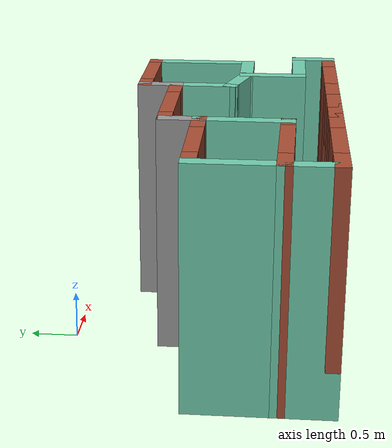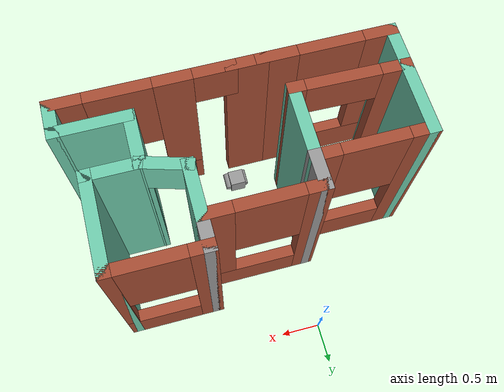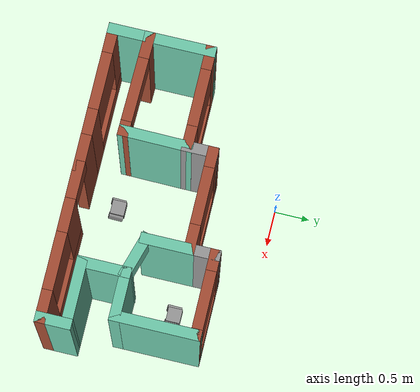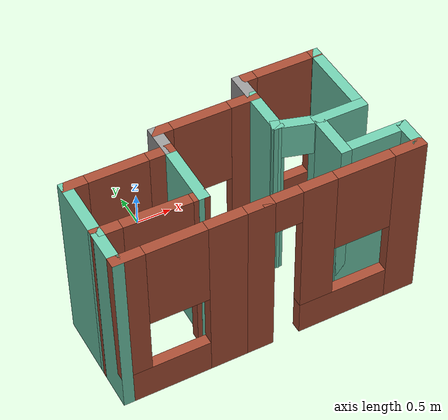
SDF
<sdf version="1.7">
 <world name="__default__">
  <gravity>0 0 -9.8</gravity>
  <magnetic_field>6e-06 2.3e-05 -4.2e-05</magnetic_field>
  <atmosphere type="adiabatic"/>
  <physics type="ode">
   <max_step_size>0.001</max_step_size>
   <real_time_factor>1</real_time_factor>
   <real_time_update_rate>1000</real_time_update_rate>
  </physics>
  <scene><ambient>0.4 0.4 0.4 1</ambient><background>0.7 0.7 0.7 1</background><shadows>1</shadows></scene>
  <spherical_coordinates>
   <surface_model>EARTH_WGS84</surface_model>
   <latitude_deg>0</latitude_deg>
   <longitude_deg>0</longitude_deg>
   <elevation>0</elevation>
   <heading_deg>0</heading_deg>
  </spherical_coordinates>
  <model name="House">
   <pose>0.57417 -1.3725 0 0 -0 0</pose>
   <link name="Wall_0">
    <collision name="Wall_0_Collision">
     <geometry><box><size>1 0.15 2.5</size></box></geometry>
     <pose>0 0 1.25 0 -0 0</pose>
    </collision>
    <visual name="Wall_0_Visual">
     <pose>0 0 1.25 0 -0 0</pose>
     <geometry><box><size>1 0.15 2.5</size></box></geometry>
     <material>
      <script><uri>file://media/materials/scripts/gazebo.material</uri><name>Gazebo/Grey</name></script>
      <ambient>0.435294 0.796078 0.67451 1</ambient>
     </material>
     <meta><layer>0</layer></meta>
    </visual>
    <pose>-2.02417 -0.3725 0 0 -0 1.5708</pose>
   </link>
   <link name="Wall_1">
    <pose>-1.34917 0.0525 0 0 -0 0</pose>
    <visual name="Wall_1_Visual_0">
     <pose>-0.5825 0 1.25 0 -0 0</pose>
     <geometry><box><size>0.335 0.15 2.5</size></box></geometry>
     <material>
      <script><uri>file://media/materials/scripts/gazebo.material</uri><name>Gazebo/Bricks</name></script>
      <ambient>0.435294 0.796078 0.67451 1</ambient>
     </material>
     <meta><layer>0</layer></meta>
    </visual>
    <collision name="Wall_1_Collision_0">
     <geometry><box><size>0.335 0.15 2.5</size></box></geometry>
     <pose>-0.5825 0 1.25 0 -0 0</pose>
    </collision>
    <visual name="Wall_1_Visual_1">
     <pose>0.1675 0 0.25 0 -0 0</pose>
     <geometry><box><size>1.165 0.15 0.5</size></box></geometry>
     <material>
      <script><uri>file://media/materials/scripts/gazebo.material</uri><name>Gazebo/Bricks</name></script>
      <ambient>0.435294 0.796078 0.67451 1</ambient>
     </material>
     <meta><layer>0</layer></meta>
    </visual>
    <collision name="Wall_1_Collision_1">
     <geometry><box><size>1.165 0.15 0.5</size></box></geometry>
     <pose>0.1675 0 0.25 0 -0 0</pose>
    </collision>
    <visual name="Wall_1_Visual_2">
     <pose>0.5675 0 1.5 0 -0 0</pose>
     <geometry><box><size>0.365 0.15 2</size></box></geometry>
     <material>
      <script><uri>file://media/materials/scripts/gazebo.material</uri><name>Gazebo/Bricks</name></script>
      <ambient>0.435294 0.796078 0.67451 1</ambient>
     </material>
     <meta><layer>0</layer></meta>
    </visual>
    <collision name="Wall_1_Collision_2">
     <geometry><box><size>0.365 0.15 2</size></box></geometry>
     <pose>0.5675 0 1.5 0 -0 0</pose>
    </collision>
    <visual name="Wall_1_Visual_3">
     <pose>-0.015 0 1.9 0 -0 0</pose>
     <geometry><box><size>0.8 0.15 1.2</size></box></geometry>
     <material>
      <script><uri>file://media/materials/scripts/gazebo.material</uri><name>Gazebo/Bricks</name></script>
      <ambient>0.435294 0.796078 0.67451 1</ambient>
     </material>
     <meta><layer>0</layer></meta>
    </visual>
    <collision name="Wall_1_Collision_3">
     <geometry><box><size>0.8 0.15 1.2</size></box></geometry>
     <pose>-0.015 0 1.9 0 -0 0</pose>
    </collision>
   </link>
   <link name="Wall_10">
    <collision name="Wall_10_Collision">
     <geometry><box><size>0.5 0.15 2.5</size></box></geometry>
     <pose>0 0 1.25 0 -0 0</pose>
    </collision>
    <visual name="Wall_10_Visual">
     <pose>0 0 1.25 0 -0 0</pose>
     <geometry><box><size>0.5 0.15 2.5</size></box></geometry>
     <material>
      <script><uri>file://media/materials/scripts/gazebo.material</uri><name>Gazebo/Grey</name></script>
      <ambient>0.435294 0.796078 0.67451 1</ambient>
     </material>
     <meta><layer>0</layer></meta>
    </visual>
    <pose>2.02583 -1.1225 0 0 -0 -1.5708</pose>
   </link>
   <link name="Wall_11">
    <pose>0.97583 -1.2975 0 0 -0 3.14159</pose>
    <visual name="Wall_11_Visual_0">
     <pose>-0.8975 0 1.25 0 -0 0</pose>
     <geometry><box><size>0.455 0.15 2.5</size></box></geometry>
     <material>
      <script><uri>file://media/materials/scripts/gazebo.material</uri><name>Gazebo/Bricks</name></script>
      <ambient>0.435294 0.796078 0.67451 1</ambient>
     </material>
     <meta><layer>0</layer></meta>
    </visual>
    <collision name="Wall_11_Collision_0">
     <geometry><box><size>0.455 0.15 2.5</size></box></geometry>
     <pose>-0.8975 0 1.25 0 -0 0</pose>
    </collision>
    <visual name="Wall_11_Visual_1">
     <pose>-0.035 0 0.25 0 -0 0</pose>
     <geometry><box><size>1.27 0.15 0.5</size></box></geometry>
     <material>
      <script><uri>file://media/materials/scripts/gazebo.material</uri><name>Gazebo/Bricks</name></script>
      <ambient>0.435294 0.796078 0.67451 1</ambient>
     </material>
     <meta><layer>0</layer></meta>
    </visual>
    <collision name="Wall_11_Collision_1">
     <geometry><box><size>1.27 0.15 0.5</size></box></geometry>
     <pose>-0.035 0 0.25 0 -0 0</pose>
    </collision>
    <visual name="Wall_11_Visual_2">
     <pose>0.365 0 1.5 0 -0 0</pose>
     <geometry><box><size>0.47 0.15 2</size></box></geometry>
     <material>
      <script><uri>file://media/materials/scripts/gazebo.material</uri><name>Gazebo/Bricks</name></script>
      <ambient>0.435294 0.796078 0.67451 1</ambient>
     </material>
     <meta><layer>0</layer></meta>
    </visual>
    <collision name="Wall_11_Collision_2">
     <geometry><box><size>0.47 0.15 2</size></box></geometry>
     <pose>0.365 0 1.5 0 -0 0</pose>
    </collision>
    <visual name="Wall_11_Visual_3">
     <pose>-0.27 0 1.9 0 -0 0</pose>
     <geometry><box><size>0.8 0.15 1.2</size></box></geometry>
     <material>
      <script><uri>file://media/materials/scripts/gazebo.material</uri><name>Gazebo/Bricks</name></script>
      <ambient>0.435294 0.796078 0.67451 1</ambient>
     </material>
     <meta><layer>0</layer></meta>
    </visual>
    <collision name="Wall_11_Collision_3">
     <geometry><box><size>0.8 0.15 1.2</size></box></geometry>
     <pose>-0.27 0 1.9 0 -0 0</pose>
    </collision>
    <visual name="Wall_11_Visual_4">
     <pose>0.8625 0 2.25 0 -0 0</pose>
     <geometry><box><size>0.525 0.15 0.5</size></box></geometry>
     <material>
      <script><uri>file://media/materials/scripts/gazebo.material</uri><name>Gazebo/Bricks</name></script>
      <ambient>0.435294 0.796078 0.67451 1</ambient>
     </material>
     <meta><layer>0</layer></meta>
    </visual>
    <collision name="Wall_11_Collision_4">
     <geometry><box><size>0.525 0.15 0.5</size></box></geometry>
     <pose>0.8625 0 2.25 0 -0 0</pose>
    </collision>
   </link>
   <link name="Wall_15">
    <pose>-1.23417 -1.2975 0 0 -0 3.14159</pose>
    <visual name="Wall_15_Visual_0">
     <pose>-0.607813 0 1.25 0 -0 0</pose>
     <geometry><box><size>0.514375 0.15 2.5</size></box></geometry>
     <material>
      <script><uri>file://media/materials/scripts/gazebo.material</uri><name>Gazebo/Bricks</name></script>
      <ambient>0.435294 0.796078 0.67451 1</ambient>
     </material>
     <meta><layer>0</layer></meta>
    </visual>
    <collision name="Wall_15_Collision_0">
     <geometry><box><size>0.514375 0.15 2.5</size></box></geometry>
     <pose>-0.607813 0 1.25 0 -0 0</pose>
    </collision>
    <visual name="Wall_15_Visual_1">
     <pose>0.257187 0 0.25 0 -0 0</pose>
     <geometry><box><size>1.21562 0.15 0.5</size></box></geometry>
     <material>
      <script><uri>file://media/materials/scripts/gazebo.material</uri><name>Gazebo/Bricks</name></script>
      <ambient>0.435294 0.796078 0.67451 1</ambient>
     </material>
     <meta><layer>0</layer></meta>
    </visual>
    <collision name="Wall_15_Collision_1">
     <geometry><box><size>1.21562 0.15 0.5</size></box></geometry>
     <pose>0.257187 0 0.25 0 -0 0</pose>
    </collision>
    <visual name="Wall_15_Visual_2">
     <pose>0.657187 0 1.5 0 -0 0</pose>
     <geometry><box><size>0.415625 0.15 2</size></box></geometry>
     <material>
      <script><uri>file://media/materials/scripts/gazebo.material</uri><name>Gazebo/Bricks</name></script>
      <ambient>0.435294 0.796078 0.67451 1</ambient>
     </material>
     <meta><layer>0</layer></meta>
    </visual>
    <collision name="Wall_15_Collision_2">
     <geometry><box><size>0.415625 0.15 2</size></box></geometry>
     <pose>0.657187 0 1.5 0 -0 0</pose>
    </collision>
    <visual name="Wall_15_Visual_3">
     <pose>0.049375 0 1.9 0 -0 0</pose>
     <geometry><box><size>0.8 0.15 1.2</size></box></geometry>
     <material>
      <script><uri>file://media/materials/scripts/gazebo.material</uri><name>Gazebo/Bricks</name></script>
      <ambient>0.435294 0.796078 0.67451 1</ambient>
     </material>
     <meta><layer>0</layer></meta>
    </visual>
    <collision name="Wall_15_Collision_3">
     <geometry><box><size>0.8 0.15 1.2</size></box></geometry>
     <pose>0.049375 0 1.9 0 -0 0</pose>
    </collision>
   </link>
   <link name="Wall_16">
    <collision name="Wall_16_Collision">
     <geometry><box><size>0.65 0.15 2.5</size></box></geometry>
     <pose>0 0 1.25 0 -0 0</pose>
    </collision>
    <visual name="Wall_16_Visual">
     <pose>0 0 1.25 0 -0 0</pose>
     <geometry><box><size>0.65 0.15 2.5</size></box></geometry>
     <material>
      <script><uri>file://media/materials/scripts/gazebo.material</uri><name>Gazebo/Grey</name></script>
      <ambient>0.435294 0.796078 0.67451 1</ambient>
     </material>
     <meta><layer>0</layer></meta>
    </visual>
    <pose>-2.02417 -1.0475 0 0 -0 1.5708</pose>
   </link>
   <link name="Wall_18">
    <collision name="Wall_18_Collision">
     <geometry><box><size>0.52 0.15 2.5</size></box></geometry>
     <pose>0 0 1.25 0 -0 0</pose>
    </collision>
    <visual name="Wall_18_Visual">
     <pose>0 0 1.25 0 -0 0</pose>
     <geometry><box><size>0.52 0.15 2.5</size></box></geometry>
     <material>
      <script><uri>file://media/materials/scripts/gazebo.material</uri><name>Gazebo/Bricks</name></script>
      <ambient>0.435294 0.796078 0.67451 1</ambient>
     </material>
     <meta><layer>0</layer></meta>
    </visual>
    <pose>-0.25917 -1.2975 0 0 -0 0</pose>
   </link>
   <link name="Wall_2">
    <collision name="Wall_2_Collision">
     <geometry><box><size>0.5 0.15 2.5</size></box></geometry>
     <pose>0 0 1.25 0 -0 0</pose>
    </collision>
    <visual name="Wall_2_Visual">
     <pose>0 0 1.25 0 -0 0</pose>
     <geometry><box><size>0.5 0.15 2.5</size></box></geometry>
     <material>
      <script><uri>file://media/materials/scripts/gazebo.material</uri><name>Gazebo/Grey</name></script>
      <ambient>1 1 1 1</ambient>
     </material>
     <meta><layer>0</layer></meta>
    </visual>
    <pose>-0.67417 0.2275 0 0 -0 1.5708</pose>
   </link>
   <link name="Wall_20">
    <collision name="Wall_20_Collision">
     <geometry><box><size>1.03006 0.15 2.5</size></box></geometry>
     <pose>0 0 1.25 0 -0 0</pose>
    </collision>
    <visual name="Wall_20_Visual">
     <pose>0 0 1.25 0 -0 0</pose>
     <geometry><box><size>1.03006 0.15 2.5</size></box></geometry>
     <material>
      <script><uri>file://media/materials/scripts/gazebo.material</uri><name>Gazebo/Grey</name></script>
      <ambient>0.435294 0.796078 0.67451 1</ambient>
     </material>
     <meta><layer>0</layer></meta>
    </visual>
    <pose>-0.67917 -0.3875 0 0 -0 1.55943</pose>
   </link>
   <link name="Wall_22">
    <pose>-1.35417 -0.8125 0 0 -0 -0.022384</pose>
    <visual name="Wall_22_Visual_0">
     <pose>-0.557426 0 1.25 0 -0 0</pose>
     <geometry><box><size>0.375484 0.15 2.5</size></box></geometry>
     <material>
      <script><uri>file://media/materials/scripts/gazebo.material</uri><name>Gazebo/Bricks</name></script>
      <ambient>0.435294 0.796078 0.67451 1</ambient>
     </material>
     <meta><layer>0</layer></meta>
    </visual>
    <collision name="Wall_22_Collision_0">
     <geometry><box><size>0.375484 0.15 2.5</size></box></geometry>
     <pose>-0.557426 0 1.25 0 -0 0</pose>
    </collision>
    <visual name="Wall_22_Visual_1">
     <pose>0.637742 0 1.25 0 -0 0</pose>
     <geometry><box><size>0.214852 0.15 2.5</size></box></geometry>
     <material>
      <script><uri>file://media/materials/scripts/gazebo.material</uri><name>Gazebo/Bricks</name></script>
      <ambient>0.435294 0.796078 0.67451 1</ambient>
     </material>
     <meta><layer>0</layer></meta>
    </visual>
    <collision name="Wall_22_Collision_1">
     <geometry><box><size>0.214852 0.15 2.5</size></box></geometry>
     <pose>0.637742 0 1.25 0 -0 0</pose>
    </collision>
    <visual name="Wall_22_Visual_2">
     <pose>0.080316 0 2.25 0 -0 0</pose>
     <geometry><box><size>0.9 0.15 0.5</size></box></geometry>
     <material>
      <script><uri>file://media/materials/scripts/gazebo.material</uri><name>Gazebo/Bricks</name></script>
      <ambient>0.435294 0.796078 0.67451 1</ambient>
     </material>
     <meta><layer>0</layer></meta>
    </visual>
    <collision name="Wall_22_Collision_2">
     <geometry><box><size>0.9 0.15 0.5</size></box></geometry>
     <pose>0.080316 0 2.25 0 -0 0</pose>
    </collision>
   </link>
   <link name="Wall_24">
    <collision name="Wall_24_Collision">
     <geometry><box><size>0.75 0.15 2.5</size></box></geometry>
     <pose>0 0 1.25 0 -0 0</pose>
    </collision>
    <visual name="Wall_24_Visual">
     <pose>0 0 1.25 0 -0 0</pose>
     <geometry><box><size>0.75 0.15 2.5</size></box></geometry>
     <material>
      <script><uri>file://media/materials/scripts/gazebo.material</uri><name>Gazebo/Grey</name></script>
      <ambient>0.435294 0.796078 0.67451 1</ambient>
     </material>
     <meta><layer>0</layer></meta>
    </visual>
    <pose>0.67583 0.1025 0 0 -0 -1.5708</pose>
   </link>
   <link name="Wall_25">
    <pose>0.92583 -0.2725 0 0 -0 -0.291457</pose>
    <visual name="Wall_25_Visual_0">
     <pose>-0.274473 0 1.25 0 -0 0</pose>
     <geometry><box><size>0.12307 0.15 2.5</size></box></geometry>
     <material>
      <script><uri>file://media/materials/scripts/gazebo.material</uri><name>Gazebo/Grey</name></script>
      <ambient>0.435294 0.796078 0.67451 1</ambient>
     </material>
     <meta><layer>0</layer></meta>
    </visual>
    <collision name="Wall_25_Collision_0">
     <geometry><box><size>0.12307 0.15 2.5</size></box></geometry>
     <pose>-0.274473 0 1.25 0 -0 0</pose>
    </collision>
    <visual name="Wall_25_Visual_1">
     <pose>0.28022 0 1.25 0 -0 0</pose>
     <geometry><box><size>0.111576 0.15 2.5</size></box></geometry>
     <material>
      <script><uri>file://media/materials/scripts/gazebo.material</uri><name>Gazebo/Grey</name></script>
      <ambient>0.435294 0.796078 0.67451 1</ambient>
     </material>
     <meta><layer>0</layer></meta>
    </visual>
    <collision name="Wall_25_Collision_1">
     <geometry><box><size>0.111576 0.15 2.5</size></box></geometry>
     <pose>0.28022 0 1.25 0 -0 0</pose>
    </collision>
    <visual name="Wall_25_Visual_2">
     <pose>0.005747 0 2.25 0 -0 0</pose>
     <geometry><box><size>0.43737 0.15 0.5</size></box></geometry>
     <material>
      <script><uri>file://media/materials/scripts/gazebo.material</uri><name>Gazebo/Grey</name></script>
      <ambient>0.435294 0.796078 0.67451 1</ambient>
     </material>
     <meta><layer>0</layer></meta>
    </visual>
    <collision name="Wall_25_Collision_2">
     <geometry><box><size>0.43737 0.15 0.5</size></box></geometry>
     <pose>0.005747 0 2.25 0 -0 0</pose>
    </collision>
   </link>
   <link name="Wall_3">
    <pose>0.00083 0.4025 0 0 -0 0</pose>
    <visual name="Wall_3_Visual_0">
     <pose>-0.6075 0 1.25 0 -0 0</pose>
     <geometry><box><size>0.285 0.15 2.5</size></box></geometry>
     <material>
      <script><uri>file://media/materials/scripts/gazebo.material</uri><name>Gazebo/Bricks</name></script>
      <ambient>0.435294 0.796078 0.67451 1</ambient>
     </material>
     <meta><layer>0</layer></meta>
    </visual>
    <collision name="Wall_3_Collision_0">
     <geometry><box><size>0.285 0.15 2.5</size></box></geometry>
     <pose>-0.6075 0 1.25 0 -0 0</pose>
    </collision>
    <visual name="Wall_3_Visual_1">
     <pose>0.1425 0 0.25 0 -0 0</pose>
     <geometry><box><size>1.215 0.15 0.5</size></box></geometry>
     <material>
      <script><uri>file://media/materials/scripts/gazebo.material</uri><name>Gazebo/Bricks</name></script>
      <ambient>0.435294 0.796078 0.67451 1</ambient>
     </material>
     <meta><layer>0</layer></meta>
    </visual>
    <collision name="Wall_3_Collision_1">
     <geometry><box><size>1.215 0.15 0.5</size></box></geometry>
     <pose>0.1425 0 0.25 0 -0 0</pose>
    </collision>
    <visual name="Wall_3_Visual_2">
     <pose>0.5425 0 1.5 0 -0 0</pose>
     <geometry><box><size>0.415 0.15 2</size></box></geometry>
     <material>
      <script><uri>file://media/materials/scripts/gazebo.material</uri><name>Gazebo/Bricks</name></script>
      <ambient>0.435294 0.796078 0.67451 1</ambient>
     </material>
     <meta><layer>0</layer></meta>
    </visual>
    <collision name="Wall_3_Collision_2">
     <geometry><box><size>0.415 0.15 2</size></box></geometry>
     <pose>0.5425 0 1.5 0 -0 0</pose>
    </collision>
    <visual name="Wall_3_Visual_3">
     <pose>-0.065 0 1.9 0 -0 0</pose>
     <geometry><box><size>0.8 0.15 1.2</size></box></geometry>
     <material>
      <script><uri>file://media/materials/scripts/gazebo.material</uri><name>Gazebo/Bricks</name></script>
      <ambient>0.435294 0.796078 0.67451 1</ambient>
     </material>
     <meta><layer>0</layer></meta>
    </visual>
    <collision name="Wall_3_Collision_3">
     <geometry><box><size>0.8 0.15 1.2</size></box></geometry>
     <pose>-0.065 0 1.9 0 -0 0</pose>
    </collision>
   </link>
   <link name="Wall_4">
    <collision name="Wall_4_Collision">
     <geometry><box><size>0.5 0.15 2.5</size></box></geometry>
     <pose>0 0 1.25 0 -0 0</pose>
    </collision>
    <visual name="Wall_4_Visual">
     <pose>0 0 1.25 0 -0 0</pose>
     <geometry><box><size>0.5 0.15 2.5</size></box></geometry>
     <material>
      <script><uri>file://media/materials/scripts/gazebo.material</uri><name>Gazebo/Grey</name></script>
      <ambient>1 1 1 1</ambient>
     </material>
     <meta><layer>0</layer></meta>
    </visual>
    <pose>0.67583 0.5775 0 0 -0 1.5708</pose>
   </link>
   <link name="Wall_5">
    <pose>1.22583 0.7525 0 0 -0 0</pose>
    <visual name="Wall_5_Visual_0">
     <pose>-0.4775 0 1.25 0 -0 0</pose>
     <geometry><box><size>0.295 0.15 2.5</size></box></geometry>
     <material>
      <script><uri>file://media/materials/scripts/gazebo.material</uri><name>Gazebo/Bricks</name></script>
      <ambient>0.435294 0.796078 0.67451 1</ambient>
     </material>
     <meta><layer>0</layer></meta>
    </visual>
    <collision name="Wall_5_Collision_0">
     <geometry><box><size>0.295 0.15 2.5</size></box></geometry>
     <pose>-0.4775 0 1.25 0 -0 0</pose>
    </collision>
    <visual name="Wall_5_Visual_1">
     <pose>0.1475 0 0.25 0 -0 0</pose>
     <geometry><box><size>0.955 0.15 0.5</size></box></geometry>
     <material>
      <script><uri>file://media/materials/scripts/gazebo.material</uri><name>Gazebo/Bricks</name></script>
      <ambient>0.435294 0.796078 0.67451 1</ambient>
     </material>
     <meta><layer>0</layer></meta>
    </visual>
    <collision name="Wall_5_Collision_1">
     <geometry><box><size>0.955 0.15 0.5</size></box></geometry>
     <pose>0.1475 0 0.25 0 -0 0</pose>
    </collision>
    <visual name="Wall_5_Visual_2">
     <pose>0.5475 0 1.5 0 -0 0</pose>
     <geometry><box><size>0.155 0.15 2</size></box></geometry>
     <material>
      <script><uri>file://media/materials/scripts/gazebo.material</uri><name>Gazebo/Bricks</name></script>
      <ambient>0.435294 0.796078 0.67451 1</ambient>
     </material>
     <meta><layer>0</layer></meta>
    </visual>
    <collision name="Wall_5_Collision_2">
     <geometry><box><size>0.155 0.15 2</size></box></geometry>
     <pose>0.5475 0 1.5 0 -0 0</pose>
    </collision>
    <visual name="Wall_5_Visual_3">
     <pose>0.07 0 1.9 0 -0 0</pose>
     <geometry><box><size>0.8 0.15 1.2</size></box></geometry>
     <material>
      <script><uri>file://media/materials/scripts/gazebo.material</uri><name>Gazebo/Bricks</name></script>
      <ambient>0.435294 0.796078 0.67451 1</ambient>
     </material>
     <meta><layer>0</layer></meta>
    </visual>
    <collision name="Wall_5_Collision_3">
     <geometry><box><size>0.8 0.15 1.2</size></box></geometry>
     <pose>0.07 0 1.9 0 -0 0</pose>
    </collision>
   </link>
   <link name="Wall_6">
    <collision name="Wall_6_Collision">
     <geometry><box><size>1.25 0.15 2.5</size></box></geometry>
     <pose>0 0 1.25 0 -0 0</pose>
    </collision>
    <visual name="Wall_6_Visual">
     <pose>0 0 1.25 0 -0 0</pose>
     <geometry><box><size>1.25 0.15 2.5</size></box></geometry>
     <material>
      <script><uri>file://media/materials/scripts/gazebo.material</uri><name>Gazebo/Grey</name></script>
      <ambient>0.435294 0.796078 0.67451 1</ambient>
     </material>
     <meta><layer>0</layer></meta>
    </visual>
    <pose>1.77583 0.2025 0 0 -0 -1.5708</pose>
   </link>
   <link name="Wall_7">
    <collision name="Wall_7_Collision">
     <geometry><box><size>0.75 0.15 2.5</size></box></geometry>
     <pose>0 0 1.25 0 -0 0</pose>
    </collision>
    <visual name="Wall_7_Visual">
     <pose>0 0 1.25 0 -0 0</pose>
     <geometry><box><size>0.75 0.15 2.5</size></box></geometry>
     <material>
      <script><uri>file://media/materials/scripts/gazebo.material</uri><name>Gazebo/Grey</name></script>
      <ambient>0.435294 0.796078 0.67451 1</ambient>
     </material>
     <meta><layer>0</layer></meta>
    </visual>
    <pose>1.47583 -0.3475 0 0 -0 3.14159</pose>
   </link>
   <link name="Wall_8">
    <collision name="Wall_8_Collision">
     <geometry><box><size>0.75 0.15 2.5</size></box></geometry>
     <pose>0 0 1.25 0 -0 0</pose>
    </collision>
    <visual name="Wall_8_Visual">
     <pose>0 0 1.25 0 -0 0</pose>
     <geometry><box><size>0.75 0.15 2.5</size></box></geometry>
     <material>
      <script><uri>file://media/materials/scripts/gazebo.material</uri><name>Gazebo/Grey</name></script>
      <ambient>0.435294 0.796078 0.67451 1</ambient>
     </material>
     <meta><layer>0</layer></meta>
    </visual>
    <pose>1.17583 -0.6475 0 0 -0 -1.5708</pose>
   </link>
   <link name="Wall_9">
    <collision name="Wall_9_Collision">
     <geometry><box><size>1 0.15 2.5</size></box></geometry>
     <pose>0 0 1.25 0 -0 0</pose>
    </collision>
    <visual name="Wall_9_Visual">
     <pose>0 0 1.25 0 -0 0</pose>
     <geometry><box><size>1 0.15 2.5</size></box></geometry>
     <material>
      <script><uri>file://media/materials/scripts/gazebo.material</uri><name>Gazebo/Grey</name></script>
      <ambient>0.435294 0.796078 0.67451 1</ambient>
     </material>
     <meta><layer>0</layer></meta>
    </visual>
    <pose>1.60083 -0.9475 0 0 -0 0</pose>
   </link>
   <static>1</static>
  </model>
  <model name="DeliveryRobot">
   <link name="link_0">
    <inertial>
     <mass>1</mass>
     <inertia>
      <ixx>0.166667</ixx>
      <ixy>0</ixy>
      <ixz>0</ixz>
      <iyy>0.166667</iyy>
      <iyz>0</iyz>
      <izz>0.166667</izz>
     </inertia>
    </inertial>
    <pose>-0.00794 0.009713 0 0 -0 0</pose>
    <visual name="visual">
     <geometry><box><size>0.2 0.2 0.2</size></box></geometry>
     <material>
      <lighting>1</lighting>
      <script><uri>file://media/materials/scripts/gazebo.material</uri><name>Gazebo/Grey</name></script>
      <shader type="pixel"><normal_map>__default__</normal_map></shader>
      <ambient>0.3 0.3 0.3 1</ambient>
      <diffuse>0.7 0.7 0.7 1</diffuse>
      <specular>0.01 0.01 0.01 1</specular>
      <emissive>0 0 0 1</emissive>
     </material>
    </visual>
    <collision name="collision">
     <geometry><box><size>0.2 0.2 0.2</size></box></geometry>
     <surface>
      <friction>
       <ode><mu>1</mu><mu2>1</mu2><fdir1>0 0 0</fdir1><slip1>0</slip1><slip2>0</slip2></ode>
       <torsional>
        <coefficient>1</coefficient>
        <patch_radius>0</patch_radius>
        <surface_radius>0</surface_radius>
        <use_patch_radius>1</use_patch_radius>
        <ode><slip>0</slip></ode>
       </torsional>
      </friction>
      <bounce><restitution_coefficient>0</restitution_coefficient><threshold>1e+06</threshold></bounce>
      <contact>
       <collide_without_contact>0</collide_without_contact>
       <collide_without_contact_bitmask>1</collide_without_contact_bitmask>
       <collide_bitmask>1</collide_bitmask>
       <ode>
        <soft_cfm>0</soft_cfm>
        <soft_erp>0.2</soft_erp>
        <kp>1e+13</kp>
        <kd>1</kd>
        <max_vel>0.01</max_vel>
        <min_depth>0</min_depth>
       </ode>
       <bullet>
        <split_impulse>1</split_impulse>
        <split_impulse_penetration_threshold>-0.01</split_impulse_penetration_threshold>
        <soft_cfm>0</soft_cfm>
        <soft_erp>0.2</soft_erp>
        <kp>1e+13</kp>
        <kd>1</kd>
       </bullet>
      </contact>
     </surface>
    </collision>
   </link>
   <link name="link_1">
    <inertial>
     <mass>1</mass>
     <inertia><ixx>0.145833</ixx><ixy>0</ixy><ixz>0</ixz><iyy>0.145833</iyy><iyz>0</iyz><izz>0.125</izz></inertia>
     <pose>0 0 0 2.75 -0 0</pose>
    </inertial>
    <pose>-0.099003 -0.00778 0 -1.71569 0 0</pose>
    <visual name="visual">
     <geometry><cylinder><radius>0.05</radius><length>0.2</length></cylinder></geometry>
     <material>
      <lighting>1</lighting>
      <script><uri>file://media/materials/scripts/gazebo.material</uri><name>Gazebo/Grey</name></script>
      <shader type="pixel"><normal_map>__default__</normal_map></shader>
      <ambient>0.3 0.3 0.3 1</ambient>
      <diffuse>0.7 0.7 0.7 1</diffuse>
      <specular>0.01 0.01 0.01 1</specular>
      <emissive>0 0 0 1</emissive>
     </material>
    </visual>
    <collision name="collision">
     <geometry><cylinder><radius>0.05</radius><length>0.2</length></cylinder></geometry>
     <surface>
      <friction>
       <ode><mu>1</mu><mu2>1</mu2><fdir1>0 0 0</fdir1><slip1>0</slip1><slip2>0</slip2></ode>
       <torsional>
        <coefficient>1</coefficient>
        <patch_radius>0</patch_radius>
        <surface_radius>0</surface_radius>
        <use_patch_radius>1</use_patch_radius>
        <ode><slip>0</slip></ode>
       </torsional>
      </friction>
      <bounce><restitution_coefficient>0</restitution_coefficient><threshold>1e+06</threshold></bounce>
      <contact>
       <collide_without_contact>0</collide_without_contact>
       <collide_without_contact_bitmask>1</collide_without_contact_bitmask>
       <collide_bitmask>1</collide_bitmask>
       <ode>
        <soft_cfm>0</soft_cfm>
        <soft_erp>0.2</soft_erp>
        <kp>1e+13</kp>
        <kd>1</kd>
        <max_vel>0.01</max_vel>
        <min_depth>0</min_depth>
       </ode>
       <bullet>
        <split_impulse>1</split_impulse>
        <split_impulse_penetration_threshold>-0.01</split_impulse_penetration_threshold>
        <soft_cfm>0</soft_cfm>
        <soft_erp>0.2</soft_erp>
        <kp>1e+13</kp>
        <kd>1</kd>
       </bullet>
      </contact>
     </surface>
    </collision>
   </link>
   <link name="link_1_clone">
    <inertial>
     <mass>1</mass>
     <inertia><ixx>0.145833</ixx><ixy>0</ixy><ixz>0</ixz><iyy>0.145833</iyy><iyz>0</iyz><izz>0.125</izz></inertia>
     <pose>0 0 0 2.75 -0 0</pose>
    </inertial>
    <pose>0.106943 -0.001932 0 -1.71569 0 0</pose>
    <visual name="visual">
     <geometry><cylinder><radius>0.05</radius><length>0.2</length></cylinder></geometry>
     <material>
      <lighting>1</lighting>
      <script><uri>file://media/materials/scripts/gazebo.material</uri><name>Gazebo/Grey</name></script>
      <shader type="pixel"><normal_map>__default__</normal_map></shader>
      <ambient>0.3 0.3 0.3 1</ambient>
      <diffuse>0.7 0.7 0.7 1</diffuse>
      <specular>0.01 0.01 0.01 1</specular>
      <emissive>0 0 0 1</emissive>
     </material>
    </visual>
    <collision name="collision">
     <geometry><cylinder><radius>0.05</radius><length>0.2</length></cylinder></geometry>
     <surface>
      <friction>
       <ode><mu>1</mu><mu2>1</mu2><fdir1>0 0 0</fdir1><slip1>0</slip1><slip2>0</slip2></ode>
       <torsional>
        <coefficient>1</coefficient>
        <patch_radius>0</patch_radius>
        <surface_radius>0</surface_radius>
        <use_patch_radius>1</use_patch_radius>
        <ode><slip>0</slip></ode>
       </torsional>
      </friction>
      <bounce><restitution_coefficient>0</restitution_coefficient><threshold>1e+06</threshold></bounce>
      <contact>
       <collide_without_contact>0</collide_without_contact>
       <collide_without_contact_bitmask>1</collide_without_contact_bitmask>
       <collide_bitmask>1</collide_bitmask>
       <ode>
        <soft_cfm>0</soft_cfm>
        <soft_erp>0.2</soft_erp>
        <kp>1e+13</kp>
        <kd>1</kd>
        <max_vel>0.01</max_vel>
        <min_depth>0</min_depth>
       </ode>
       <bullet>
        <split_impulse>1</split_impulse>
        <split_impulse_penetration_threshold>-0.01</split_impulse_penetration_threshold>
        <soft_cfm>0</soft_cfm>
        <soft_erp>0.2</soft_erp>
        <kp>1e+13</kp>
        <kd>1</kd>
       </bullet>
      </contact>
     </surface>
    </collision>
   </link>
   <joint name="link_0_JOINT_0" type="revolute">
    <parent>link_0</parent>
    <child>link_1</child>
    <axis>
     <xyz>0 0 1</xyz>
     <limit>
      <lower>-1.79769e+308</lower>
      <upper>1.79769e+308</upper>
      <effort>-1</effort>
      <velocity>-1</velocity>
     </limit>
     <dynamics>
      <spring_reference>0</spring_reference>
      <spring_stiffness>0</spring_stiffness>
      <damping>0</damping>
     </dynamics>
    </axis>
    <physics>
     <ode><limit><cfm>0</cfm><erp>0.2</erp></limit><suspension><cfm>0</cfm><erp>0.2</erp></suspension></ode>
    </physics>
   </joint>
   <joint name="link_0_JOINT_1" type="revolute">
    <parent>link_0</parent>
    <child>link_1_clone</child>
    <pose>0 0 0 -0.02 0 0</pose>
    <axis>
     <xyz>0 0 1</xyz>
     <limit>
      <lower>-1.79769e+308</lower>
      <upper>1.79769e+308</upper>
      <effort>-1</effort>
      <velocity>-1</velocity>
     </limit>
     <dynamics>
      <spring_reference>0</spring_reference>
      <spring_stiffness>0</spring_stiffness>
      <damping>0</damping>
     </dynamics>
    </axis>
    <physics>
     <ode><limit><cfm>0</cfm><erp>0.2</erp></limit><suspension><cfm>0</cfm><erp>0.2</erp></suspension></ode>
    </physics>
   </joint>
   <static>0</static>
   <pose>0.57707 -2.16289 0.5 0 -0 0</pose>
  </model>
  <model name="DeliveryRobot_clone">
   <link name="link_0">
    <inertial>
     <mass>1</mass>
     <inertia>
      <ixx>0.166667</ixx>
      <ixy>0</ixy>
      <ixz>0</ixz>
      <iyy>0.166667</iyy>
      <iyz>0</iyz>
      <izz>0.166667</izz>
     </inertia>
    </inertial>
    <pose>-0.00794 0.009713 0 0 -0 0</pose>
    <visual name="visual">
     <geometry><box><size>0.2 0.2 0.2</size></box></geometry>
     <material>
      <lighting>1</lighting>
      <script><uri>file://media/materials/scripts/gazebo.material</uri><name>Gazebo/Grey</name></script>
      <shader type="pixel"><normal_map>__default__</normal_map></shader>
      <ambient>0.3 0.3 0.3 1</ambient>
      <diffuse>0.7 0.7 0.7 1</diffuse>
      <specular>0.01 0.01 0.01 1</specular>
      <emissive>0 0 0 1</emissive>
     </material>
    </visual>
    <collision name="collision">
     <geometry><box><size>0.2 0.2 0.2</size></box></geometry>
     <surface>
      <friction>
       <ode><mu>1</mu><mu2>1</mu2><fdir1>0 0 0</fdir1><slip1>0</slip1><slip2>0</slip2></ode>
       <torsional>
        <coefficient>1</coefficient>
        <patch_radius>0</patch_radius>
        <surface_radius>0</surface_radius>
        <use_patch_radius>1</use_patch_radius>
        <ode><slip>0</slip></ode>
       </torsional>
      </friction>
      <bounce><restitution_coefficient>0</restitution_coefficient><threshold>1e+06</threshold></bounce>
      <contact>
       <collide_without_contact>0</collide_without_contact>
       <collide_without_contact_bitmask>1</collide_without_contact_bitmask>
       <collide_bitmask>1</collide_bitmask>
       <ode>
        <soft_cfm>0</soft_cfm>
        <soft_erp>0.2</soft_erp>
        <kp>1e+13</kp>
        <kd>1</kd>
        <max_vel>0.01</max_vel>
        <min_depth>0</min_depth>
       </ode>
       <bullet>
        <split_impulse>1</split_impulse>
        <split_impulse_penetration_threshold>-0.01</split_impulse_penetration_threshold>
        <soft_cfm>0</soft_cfm>
        <soft_erp>0.2</soft_erp>
        <kp>1e+13</kp>
        <kd>1</kd>
       </bullet>
      </contact>
     </surface>
    </collision>
   </link>
   <link name="link_1">
    <inertial>
     <mass>1</mass>
     <inertia><ixx>0.145833</ixx><ixy>0</ixy><ixz>0</ixz><iyy>0.145833</iyy><iyz>0</iyz><izz>0.125</izz></inertia>
     <pose>0 0 0 2.75 -0 0</pose>
    </inertial>
    <pose>-0.099003 -0.00778 0 -1.71569 0 0</pose>
    <visual name="visual">
     <geometry><cylinder><radius>0.05</radius><length>0.2</length></cylinder></geometry>
     <material>
      <lighting>1</lighting>
      <script><uri>file://media/materials/scripts/gazebo.material</uri><name>Gazebo/Grey</name></script>
      <shader type="pixel"><normal_map>__default__</normal_map></shader>
      <ambient>0.3 0.3 0.3 1</ambient>
      <diffuse>0.7 0.7 0.7 1</diffuse>
      <specular>0.01 0.01 0.01 1</specular>
      <emissive>0 0 0 1</emissive>
     </material>
    </visual>
    <collision name="collision">
     <geometry><cylinder><radius>0.05</radius><length>0.2</length></cylinder></geometry>
     <surface>
      <friction>
       <ode><mu>1</mu><mu2>1</mu2><fdir1>0 0 0</fdir1><slip1>0</slip1><slip2>0</slip2></ode>
       <torsional>
        <coefficient>1</coefficient>
        <patch_radius>0</patch_radius>
        <surface_radius>0</surface_radius>
        <use_patch_radius>1</use_patch_radius>
        <ode><slip>0</slip></ode>
       </torsional>
      </friction>
      <bounce><restitution_coefficient>0</restitution_coefficient><threshold>1e+06</threshold></bounce>
      <contact>
       <collide_without_contact>0</collide_without_contact>
       <collide_without_contact_bitmask>1</collide_without_contact_bitmask>
       <collide_bitmask>1</collide_bitmask>
       <ode>
        <soft_cfm>0</soft_cfm>
        <soft_erp>0.2</soft_erp>
        <kp>1e+13</kp>
        <kd>1</kd>
        <max_vel>0.01</max_vel>
        <min_depth>0</min_depth>
       </ode>
       <bullet>
        <split_impulse>1</split_impulse>
        <split_impulse_penetration_threshold>-0.01</split_impulse_penetration_threshold>
        <soft_cfm>0</soft_cfm>
        <soft_erp>0.2</soft_erp>
        <kp>1e+13</kp>
        <kd>1</kd>
       </bullet>
      </contact>
     </surface>
    </collision>
   </link>
   <link name="link_1_clone">
    <inertial>
     <mass>1</mass>
     <inertia><ixx>0.145833</ixx><ixy>0</ixy><ixz>0</ixz><iyy>0.145833</iyy><iyz>0</iyz><izz>0.125</izz></inertia>
     <pose>0 0 0 2.75 -0 0</pose>
    </inertial>
    <pose>0.106943 -0.001932 0 -1.71569 0 0</pose>
    <visual name="visual">
     <geometry><cylinder><radius>0.05</radius><length>0.2</length></cylinder></geometry>
     <material>
      <lighting>1</lighting>
      <script><uri>file://media/materials/scripts/gazebo.material</uri><name>Gazebo/Grey</name></script>
      <shader type="pixel"><normal_map>__default__</normal_map></shader>
      <ambient>0.3 0.3 0.3 1</ambient>
      <diffuse>0.7 0.7 0.7 1</diffuse>
      <specular>0.01 0.01 0.01 1</specular>
      <emissive>0 0 0 1</emissive>
     </material>
    </visual>
    <collision name="collision">
     <geometry><cylinder><radius>0.05</radius><length>0.2</length></cylinder></geometry>
     <surface>
      <friction>
       <ode><mu>1</mu><mu2>1</mu2><fdir1>0 0 0</fdir1><slip1>0</slip1><slip2>0</slip2></ode>
       <torsional>
        <coefficient>1</coefficient>
        <patch_radius>0</patch_radius>
        <surface_radius>0</surface_radius>
        <use_patch_radius>1</use_patch_radius>
        <ode><slip>0</slip></ode>
       </torsional>
      </friction>
      <bounce><restitution_coefficient>0</restitution_coefficient><threshold>1e+06</threshold></bounce>
      <contact>
       <collide_without_contact>0</collide_without_contact>
       <collide_without_contact_bitmask>1</collide_without_contact_bitmask>
       <collide_bitmask>1</collide_bitmask>
       <ode>
        <soft_cfm>0</soft_cfm>
        <soft_erp>0.2</soft_erp>
        <kp>1e+13</kp>
        <kd>1</kd>
        <max_vel>0.01</max_vel>
        <min_depth>0</min_depth>
       </ode>
       <bullet>
        <split_impulse>1</split_impulse>
        <split_impulse_penetration_threshold>-0.01</split_impulse_penetration_threshold>
        <soft_cfm>0</soft_cfm>
        <soft_erp>0.2</soft_erp>
        <kp>1e+13</kp>
        <kd>1</kd>
       </bullet>
      </contact>
     </surface>
    </collision>
   </link>
   <joint name="link_0_JOINT_0" type="revolute">
    <parent>link_0</parent>
    <child>link_1</child>
    <axis>
     <xyz>0 0 1</xyz>
     <limit>
      <lower>-1.79769e+308</lower>
      <upper>1.79769e+308</upper>
      <effort>-1</effort>
      <velocity>-1</velocity>
     </limit>
     <dynamics>
      <spring_reference>0</spring_reference>
      <spring_stiffness>0</spring_stiffness>
      <damping>0</damping>
     </dynamics>
    </axis>
    <physics>
     <ode><limit><cfm>0</cfm><erp>0.2</erp></limit><suspension><cfm>0</cfm><erp>0.2</erp></suspension></ode>
    </physics>
   </joint>
   <joint name="link_0_JOINT_1" type="revolute">
    <parent>link_0</parent>
    <child>link_1_clone</child>
    <pose>0 0 0 -0.02 0 0</pose>
    <axis>
     <xyz>0 0 1</xyz>
     <limit>
      <lower>-1.79769e+308</lower>
      <upper>1.79769e+308</upper>
      <effort>-1</effort>
      <velocity>-1</velocity>
     </limit>
     <dynamics>
      <spring_reference>0</spring_reference>
      <spring_stiffness>0</spring_stiffness>
      <damping>0</damping>
     </dynamics>
    </axis>
    <physics>
     <ode><limit><cfm>0</cfm><erp>0.2</erp></limit><suspension><cfm>0</cfm><erp>0.2</erp></suspension></ode>
    </physics>
   </joint>
   <static>0</static>
   <pose>1.88095 -1.04316 0.5 0 -0 0</pose>
  </model>
 </world>
</sdf>
